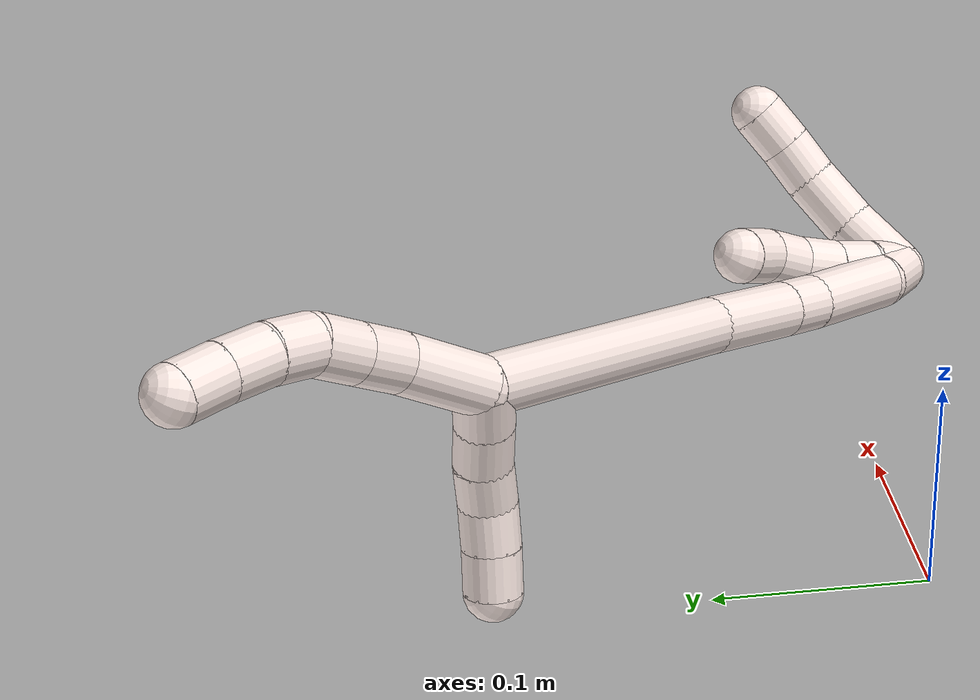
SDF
<sdf version="1.7">
 <world name="default">
  <model name="11">
   <static>0</static>
   <link name="11">
    <collision name="collision-cylinder-e_1_2_8">
     <pose>-0.001055 -0.000938 0.020373 0.046016 -0.051697 -0.00119</pose>
     <geometry><cylinder><radius>0.0125</radius><length>0.040844</length></cylinder></geometry>
     <surface>
      <friction><ode><mu>1.16</mu><mu2>1.16</mu2><slip1>0</slip1><slip2>0</slip2></ode></friction>
      <contact><ode><kp>1e+06</kp><kd>1</kd><max_vel>0</max_vel><min_depth>0.001</min_depth></ode></contact>
     </surface>
    </collision>
    <visual name="visual-cylinder-e_1_2_8">
     <pose>-0.001055 -0.000938 0.020373 0.046016 -0.051697 -0.00119</pose>
     <geometry><cylinder><radius>0.0125</radius><length>0.040844</length></cylinder></geometry>
     <material><ambient>1 0.933333 0.909804 1</ambient></material>
    </visual>
    <collision name="collision-cylinder-e_2_8_9">
     <pose>-0.004062 -0.001359 0.051673 -0.047294 -0.176498 0.004185</pose>
     <geometry><cylinder><radius>0.0125</radius><length>0.022223</length></cylinder></geometry>
     <surface>
      <friction><ode><mu>1.16</mu><mu2>1.16</mu2><slip1>0</slip1><slip2>0</slip2></ode></friction>
      <contact><ode><kp>1e+06</kp><kd>1</kd><max_vel>0</max_vel><min_depth>0.001</min_depth></ode></contact>
     </surface>
    </collision>
    <visual name="visual-cylinder-e_2_8_9">
     <pose>-0.004062 -0.001359 0.051673 -0.047294 -0.176498 0.004185</pose>
     <geometry><cylinder><radius>0.0125</radius><length>0.022223</length></cylinder></geometry>
     <material><ambient>1 0.933333 0.909804 1</ambient></material>
    </visual>
    <collision name="collision-cylinder-e_3_9_10">
     <pose>-0.007977 -0.000368 0.073459 -0.043662 -0.178818 0.003915</pose>
     <geometry><cylinder><radius>0.0125</radius><length>0.022094</length></cylinder></geometry>
     <surface>
      <friction><ode><mu>1.16</mu><mu2>1.16</mu2><slip1>0</slip1><slip2>0</slip2></ode></friction>
      <contact><ode><kp>1e+06</kp><kd>1</kd><max_vel>0</max_vel><min_depth>0.001</min_depth></ode></contact>
     </surface>
    </collision>
    <visual name="visual-cylinder-e_3_9_10">
     <pose>-0.007977 -0.000368 0.073459 -0.043662 -0.178818 0.003915</pose>
     <geometry><cylinder><radius>0.0125</radius><length>0.022094</length></cylinder></geometry>
     <material><ambient>1 0.933333 0.909804 1</ambient></material>
    </visual>
    <collision name="collision-cylinder-e_4_10_11">
     <pose>-0.011275 0.00405 0.094022 -0.386022 -0.126597 0.024774</pose>
     <geometry><cylinder><radius>0.0125</radius><length>0.021116</length></cylinder></geometry>
     <surface>
      <friction><ode><mu>1.16</mu><mu2>1.16</mu2><slip1>0</slip1><slip2>0</slip2></ode></friction>
      <contact><ode><kp>1e+06</kp><kd>1</kd><max_vel>0</max_vel><min_depth>0.001</min_depth></ode></contact>
     </surface>
    </collision>
    <visual name="visual-cylinder-e_4_10_11">
     <pose>-0.011275 0.00405 0.094022 -0.386022 -0.126597 0.024774</pose>
     <geometry><cylinder><radius>0.0125</radius><length>0.021116</length></cylinder></geometry>
     <material><ambient>1 0.933333 0.909804 1</ambient></material>
    </visual>
    <collision name="collision-cylinder-e_5_11_12">
     <pose>-0.013467 0.013439 0.113374 -0.513789 -0.077336 0.020326</pose>
     <geometry><cylinder><radius>0.0125</radius><length>0.022225</length></cylinder></geometry>
     <surface>
      <friction><ode><mu>1.16</mu><mu2>1.16</mu2><slip1>0</slip1><slip2>0</slip2></ode></friction>
      <contact><ode><kp>1e+06</kp><kd>1</kd><max_vel>0</max_vel><min_depth>0.001</min_depth></ode></contact>
     </surface>
    </collision>
    <visual name="visual-cylinder-e_5_11_12">
     <pose>-0.013467 0.013439 0.113374 -0.513789 -0.077336 0.020326</pose>
     <geometry><cylinder><radius>0.0125</radius><length>0.022225</length></cylinder></geometry>
     <material><ambient>1 0.933333 0.909804 1</ambient></material>
    </visual>
    <collision name="collision-cylinder-e_6_12_6">
     <pose>-0.015391 0.024574 0.132081 -0.56087 -0.099338 0.028633</pose>
     <geometry><cylinder><radius>0.0125</radius><length>0.021499</length></cylinder></geometry>
     <surface>
      <friction><ode><mu>1.16</mu><mu2>1.16</mu2><slip1>0</slip1><slip2>0</slip2></ode></friction>
      <contact><ode><kp>1e+06</kp><kd>1</kd><max_vel>0</max_vel><min_depth>0.001</min_depth></ode></contact>
     </surface>
    </collision>
    <visual name="visual-cylinder-e_6_12_6">
     <pose>-0.015391 0.024574 0.132081 -0.56087 -0.099338 0.028633</pose>
     <geometry><cylinder><radius>0.0125</radius><length>0.021499</length></cylinder></geometry>
     <material><ambient>1 0.933333 0.909804 1</ambient></material>
    </visual>
    <collision name="collision-cylinder-e_1_2_13">
     <pose>0.006204 0.00597 -0.005086 -2.27644 0.669201 -1.29079</pose>
     <geometry><cylinder><radius>0.0125</radius><length>0.02</length></cylinder></geometry>
     <surface>
      <friction><ode><mu>1.16</mu><mu2>1.16</mu2><slip1>0</slip1><slip2>0</slip2></ode></friction>
      <contact><ode><kp>1e+06</kp><kd>1</kd><max_vel>0</max_vel><min_depth>0.001</min_depth></ode></contact>
     </surface>
    </collision>
    <visual name="visual-cylinder-e_1_2_13">
     <pose>0.006204 0.00597 -0.005086 -2.27644 0.669201 -1.29079</pose>
     <geometry><cylinder><radius>0.0125</radius><length>0.02</length></cylinder></geometry>
     <material><ambient>1 0.933333 0.909804 1</ambient></material>
    </visual>
    <collision name="collision-cylinder-e_2_13_14">
     <pose>0.018534 0.018405 -0.01472 -2.18376 0.65945 -1.16547</pose>
     <geometry><cylinder><radius>0.0125</radius><length>0.02</length></cylinder></geometry>
     <surface>
      <friction><ode><mu>1.16</mu><mu2>1.16</mu2><slip1>0</slip1><slip2>0</slip2></ode></friction>
      <contact><ode><kp>1e+06</kp><kd>1</kd><max_vel>0</max_vel><min_depth>0.001</min_depth></ode></contact>
     </surface>
    </collision>
    <visual name="visual-cylinder-e_2_13_14">
     <pose>0.018534 0.018405 -0.01472 -2.18376 0.65945 -1.16547</pose>
     <geometry><cylinder><radius>0.0125</radius><length>0.02</length></cylinder></geometry>
     <material><ambient>1 0.933333 0.909804 1</ambient></material>
    </visual>
    <collision name="collision-cylinder-e_3_14_15">
     <pose>0.029826 0.031525 -0.024653 -2.25118 0.542799 -1.05591</pose>
     <geometry><cylinder><radius>0.0125</radius><length>0.02</length></cylinder></geometry>
     <surface>
      <friction><ode><mu>1.16</mu><mu2>1.16</mu2><slip1>0</slip1><slip2>0</slip2></ode></friction>
      <contact><ode><kp>1e+06</kp><kd>1</kd><max_vel>0</max_vel><min_depth>0.001</min_depth></ode></contact>
     </surface>
    </collision>
    <visual name="visual-cylinder-e_3_14_15">
     <pose>0.029826 0.031525 -0.024653 -2.25118 0.542799 -1.05591</pose>
     <geometry><cylinder><radius>0.0125</radius><length>0.02</length></cylinder></geometry>
     <material><ambient>1 0.933333 0.909804 1</ambient></material>
    </visual>
    <collision name="collision-cylinder-e_4_15_16">
     <pose>0.038452 0.046554 -0.034274 -2.03903 0.353399 -0.565262</pose>
     <geometry><cylinder><radius>0.0125</radius><length>0.02</length></cylinder></geometry>
     <surface>
      <friction><ode><mu>1.16</mu><mu2>1.16</mu2><slip1>0</slip1><slip2>0</slip2></ode></friction>
      <contact><ode><kp>1e+06</kp><kd>1</kd><max_vel>0</max_vel><min_depth>0.001</min_depth></ode></contact>
     </surface>
    </collision>
    <visual name="visual-cylinder-e_4_15_16">
     <pose>0.038452 0.046554 -0.034274 -2.03903 0.353399 -0.565262</pose>
     <geometry><cylinder><radius>0.0125</radius><length>0.02</length></cylinder></geometry>
     <material><ambient>1 0.933333 0.909804 1</ambient></material>
    </visual>
    <collision name="collision-cylinder-e_5_16_5">
     <pose>0.045435 0.06349 -0.042282 -1.98584 0.359903 -0.544082</pose>
     <geometry><cylinder><radius>0.0125</radius><length>0.02</length></cylinder></geometry>
     <surface>
      <friction><ode><mu>1.16</mu><mu2>1.16</mu2><slip1>0</slip1><slip2>0</slip2></ode></friction>
      <contact><ode><kp>1e+06</kp><kd>1</kd><max_vel>0</max_vel><min_depth>0.001</min_depth></ode></contact>
     </surface>
    </collision>
    <visual name="visual-cylinder-e_5_16_5">
     <pose>0.045435 0.06349 -0.042282 -1.98584 0.359903 -0.544082</pose>
     <geometry><cylinder><radius>0.0125</radius><length>0.02</length></cylinder></geometry>
     <material><ambient>1 0.933333 0.909804 1</ambient></material>
    </visual>
    <collision name="collision-cylinder-e_1_2_17">
     <pose>0.020741 -0.028429 -0.07028 2.7572 0.267052 1.20833</pose>
     <geometry><cylinder><radius>0.0125</radius><length>0.157197</length></cylinder></geometry>
     <surface>
      <friction><ode><mu>1.16</mu><mu2>1.16</mu2><slip1>0</slip1><slip2>0</slip2></ode></friction>
      <contact><ode><kp>1e+06</kp><kd>1</kd><max_vel>0</max_vel><min_depth>0.001</min_depth></ode></contact>
     </surface>
    </collision>
    <visual name="visual-cylinder-e_1_2_17">
     <pose>0.020741 -0.028429 -0.07028 2.7572 0.267052 1.20833</pose>
     <geometry><cylinder><radius>0.0125</radius><length>0.157197</length></cylinder></geometry>
     <material><ambient>1 0.933333 0.909804 1</ambient></material>
    </visual>
    <collision name="collision-cylinder-e_2_17_18">
     <pose>0.045591 -0.065634 -0.16356 2.77711 0.165367 0.845205</pose>
     <geometry><cylinder><radius>0.0125</radius><length>0.049914</length></cylinder></geometry>
     <surface>
      <friction><ode><mu>1.16</mu><mu2>1.16</mu2><slip1>0</slip1><slip2>0</slip2></ode></friction>
      <contact><ode><kp>1e+06</kp><kd>1</kd><max_vel>0</max_vel><min_depth>0.001</min_depth></ode></contact>
     </surface>
    </collision>
    <visual name="visual-cylinder-e_2_17_18">
     <pose>0.045591 -0.065634 -0.16356 2.77711 0.165367 0.845205</pose>
     <geometry><cylinder><radius>0.0125</radius><length>0.049914</length></cylinder></geometry>
     <material><ambient>1 0.933333 0.909804 1</ambient></material>
    </visual>
    <collision name="collision-cylinder-e_3_18_19">
     <pose>0.051308 -0.078238 -0.196289 2.76663 0.152664 0.766427</pose>
     <geometry><cylinder><radius>0.0125</radius><length>0.021159</length></cylinder></geometry>
     <surface>
      <friction><ode><mu>1.16</mu><mu2>1.16</mu2><slip1>0</slip1><slip2>0</slip2></ode></friction>
      <contact><ode><kp>1e+06</kp><kd>1</kd><max_vel>0</max_vel><min_depth>0.001</min_depth></ode></contact>
     </surface>
    </collision>
    <visual name="visual-cylinder-e_3_18_19">
     <pose>0.051308 -0.078238 -0.196289 2.76663 0.152664 0.766427</pose>
     <geometry><cylinder><radius>0.0125</radius><length>0.021159</length></cylinder></geometry>
     <material><ambient>1 0.933333 0.909804 1</ambient></material>
    </visual>
    <collision name="collision-cylinder-e_4_19_20">
     <pose>0.05583 -0.092111 -0.228608 2.72325 0.117296 0.539703</pose>
     <geometry><cylinder><radius>0.0125</radius><length>0.049784</length></cylinder></geometry>
     <surface>
      <friction><ode><mu>1.16</mu><mu2>1.16</mu2><slip1>0</slip1><slip2>0</slip2></ode></friction>
      <contact><ode><kp>1e+06</kp><kd>1</kd><max_vel>0</max_vel><min_depth>0.001</min_depth></ode></contact>
     </surface>
    </collision>
    <visual name="visual-cylinder-e_4_19_20">
     <pose>0.05583 -0.092111 -0.228608 2.72325 0.117296 0.539703</pose>
     <geometry><cylinder><radius>0.0125</radius><length>0.049784</length></cylinder></geometry>
     <material><ambient>1 0.933333 0.909804 1</ambient></material>
    </visual>
    <collision name="collision-cylinder-e_5_20_1">
     <pose>0.062977 -0.107491 -0.259799 2.58616 0.396193 1.22695</pose>
     <geometry><cylinder><radius>0.0125</radius><length>0.021946</length></cylinder></geometry>
     <surface>
      <friction><ode><mu>1.16</mu><mu2>1.16</mu2><slip1>0</slip1><slip2>0</slip2></ode></friction>
      <contact><ode><kp>1e+06</kp><kd>1</kd><max_vel>0</max_vel><min_depth>0.001</min_depth></ode></contact>
     </surface>
    </collision>
    <visual name="visual-cylinder-e_5_20_1">
     <pose>0.062977 -0.107491 -0.259799 2.58616 0.396193 1.22695</pose>
     <geometry><cylinder><radius>0.0125</radius><length>0.021946</length></cylinder></geometry>
     <material><ambient>1 0.933333 0.909804 1</ambient></material>
    </visual>
    <collision name="collision-cylinder-e_1_1_21">
     <pose>0.075662 -0.123019 -0.260288 0.898499 0.575513 0.283479</pose>
     <geometry><cylinder><radius>0.0125</radius><length>0.03105</length></cylinder></geometry>
     <surface>
      <friction><ode><mu>1.16</mu><mu2>1.16</mu2><slip1>0</slip1><slip2>0</slip2></ode></friction>
      <contact><ode><kp>1e+06</kp><kd>1</kd><max_vel>0</max_vel><min_depth>0.001</min_depth></ode></contact>
     </surface>
    </collision>
    <visual name="visual-cylinder-e_1_1_21">
     <pose>0.075662 -0.123019 -0.260288 0.898499 0.575513 0.283479</pose>
     <geometry><cylinder><radius>0.0125</radius><length>0.03105</length></cylinder></geometry>
     <material><ambient>1 0.933333 0.909804 1</ambient></material>
    </visual>
    <collision name="collision-cylinder-e_2_21_22">
     <pose>0.088941 -0.143036 -0.243012 0.820246 0.34505 0.151237</pose>
     <geometry><cylinder><radius>0.0125</radius><length>0.028558</length></cylinder></geometry>
     <surface>
      <friction><ode><mu>1.16</mu><mu2>1.16</mu2><slip1>0</slip1><slip2>0</slip2></ode></friction>
      <contact><ode><kp>1e+06</kp><kd>1</kd><max_vel>0</max_vel><min_depth>0.001</min_depth></ode></contact>
     </surface>
    </collision>
    <visual name="visual-cylinder-e_2_21_22">
     <pose>0.088941 -0.143036 -0.243012 0.820246 0.34505 0.151237</pose>
     <geometry><cylinder><radius>0.0125</radius><length>0.028558</length></cylinder></geometry>
     <material><ambient>1 0.933333 0.909804 1</ambient></material>
    </visual>
    <collision name="collision-cylinder-e_3_22_23">
     <pose>0.0956 -0.159928 -0.22684 0.789491 0.181786 0.075907</pose>
     <geometry><cylinder><radius>0.0125</radius><length>0.020235</length></cylinder></geometry>
     <surface>
      <friction><ode><mu>1.16</mu><mu2>1.16</mu2><slip1>0</slip1><slip2>0</slip2></ode></friction>
      <contact><ode><kp>1e+06</kp><kd>1</kd><max_vel>0</max_vel><min_depth>0.001</min_depth></ode></contact>
     </surface>
    </collision>
    <visual name="visual-cylinder-e_3_22_23">
     <pose>0.0956 -0.159928 -0.22684 0.789491 0.181786 0.075907</pose>
     <geometry><cylinder><radius>0.0125</radius><length>0.020235</length></cylinder></geometry>
     <material><ambient>1 0.933333 0.909804 1</ambient></material>
    </visual>
    <collision name="collision-cylinder-e_4_23_4">
     <pose>0.099137 -0.173493 -0.212322 0.71333 0.170253 0.063569</pose>
     <geometry><cylinder><radius>0.0125</radius><length>0.020157</length></cylinder></geometry>
     <surface>
      <friction><ode><mu>1.16</mu><mu2>1.16</mu2><slip1>0</slip1><slip2>0</slip2></ode></friction>
      <contact><ode><kp>1e+06</kp><kd>1</kd><max_vel>0</max_vel><min_depth>0.001</min_depth></ode></contact>
     </surface>
    </collision>
    <visual name="visual-cylinder-e_4_23_4">
     <pose>0.099137 -0.173493 -0.212322 0.71333 0.170253 0.063569</pose>
     <geometry><cylinder><radius>0.0125</radius><length>0.020157</length></cylinder></geometry>
     <material><ambient>1 0.933333 0.909804 1</ambient></material>
    </visual>
    <collision name="collision-cylinder-e_1_1_24">
     <pose>0.066406 -0.110921 -0.258617 -0.192665 -0.080663 0.007799</pose>
     <geometry><cylinder><radius>0.0125</radius><length>0.02</length></cylinder></geometry>
     <surface>
      <friction><ode><mu>1.16</mu><mu2>1.16</mu2><slip1>0</slip1><slip2>0</slip2></ode></friction>
      <contact><ode><kp>1e+06</kp><kd>1</kd><max_vel>0</max_vel><min_depth>0.001</min_depth></ode></contact>
     </surface>
    </collision>
    <visual name="visual-cylinder-e_1_1_24">
     <pose>0.066406 -0.110921 -0.258617 -0.192665 -0.080663 0.007799</pose>
     <geometry><cylinder><radius>0.0125</radius><length>0.02</length></cylinder></geometry>
     <material><ambient>1 0.933333 0.909804 1</ambient></material>
    </visual>
    <collision name="collision-cylinder-e_2_24_25">
     <pose>0.06659 -0.107081 -0.239072 -0.195287 0.099107 -0.009716</pose>
     <geometry><cylinder><radius>0.0125</radius><length>0.02</length></cylinder></geometry>
     <surface>
      <friction><ode><mu>1.16</mu><mu2>1.16</mu2><slip1>0</slip1><slip2>0</slip2></ode></friction>
      <contact><ode><kp>1e+06</kp><kd>1</kd><max_vel>0</max_vel><min_depth>0.001</min_depth></ode></contact>
     </surface>
    </collision>
    <visual name="visual-cylinder-e_2_24_25">
     <pose>0.06659 -0.107081 -0.239072 -0.195287 0.099107 -0.009716</pose>
     <geometry><cylinder><radius>0.0125</radius><length>0.02</length></cylinder></geometry>
     <material><ambient>1 0.933333 0.909804 1</ambient></material>
    </visual>
    <collision name="collision-cylinder-e_3_25_26">
     <pose>0.069024 -0.104245 -0.219456 -0.091616 0.144982 -0.006658</pose>
     <geometry><cylinder><radius>0.0125</radius><length>0.02</length></cylinder></geometry>
     <surface>
      <friction><ode><mu>1.16</mu><mu2>1.16</mu2><slip1>0</slip1><slip2>0</slip2></ode></friction>
      <contact><ode><kp>1e+06</kp><kd>1</kd><max_vel>0</max_vel><min_depth>0.001</min_depth></ode></contact>
     </surface>
    </collision>
    <visual name="visual-cylinder-e_3_25_26">
     <pose>0.069024 -0.104245 -0.219456 -0.091616 0.144982 -0.006658</pose>
     <geometry><cylinder><radius>0.0125</radius><length>0.02</length></cylinder></geometry>
     <material><ambient>1 0.933333 0.909804 1</ambient></material>
    </visual>
    <collision name="collision-cylinder-e_4_26_27">
     <pose>0.069498 -0.102874 -0.199661 -0.046791 -0.09725 0.002277</pose>
     <geometry><cylinder><radius>0.0125</radius><length>0.02</length></cylinder></geometry>
     <surface>
      <friction><ode><mu>1.16</mu><mu2>1.16</mu2><slip1>0</slip1><slip2>0</slip2></ode></friction>
      <contact><ode><kp>1e+06</kp><kd>1</kd><max_vel>0</max_vel><min_depth>0.001</min_depth></ode></contact>
     </surface>
    </collision>
    <visual name="visual-cylinder-e_4_26_27">
     <pose>0.069498 -0.102874 -0.199661 -0.046791 -0.09725 0.002277</pose>
     <geometry><cylinder><radius>0.0125</radius><length>0.02</length></cylinder></geometry>
     <material><ambient>1 0.933333 0.909804 1</ambient></material>
    </visual>
    <collision name="collision-cylinder-e_5_27_3">
     <pose>0.065492 -0.099986 -0.180504 -0.257047 -0.308385 0.040168</pose>
     <geometry><cylinder><radius>0.0125</radius><length>0.02</length></cylinder></geometry>
     <surface>
      <friction><ode><mu>1.16</mu><mu2>1.16</mu2><slip1>0</slip1><slip2>0</slip2></ode></friction>
      <contact><ode><kp>1e+06</kp><kd>1</kd><max_vel>0</max_vel><min_depth>0.001</min_depth></ode></contact>
     </surface>
    </collision>
    <visual name="visual-cylinder-e_5_27_3">
     <pose>0.065492 -0.099986 -0.180504 -0.257047 -0.308385 0.040168</pose>
     <geometry><cylinder><radius>0.0125</radius><length>0.02</length></cylinder></geometry>
     <material><ambient>1 0.933333 0.909804 1</ambient></material>
    </visual>
    <collision name="collision-sphere-3">
     <pose>0.062456 -0.097564 -0.171289 0 -0 0</pose>
     <geometry><sphere><radius>0.0125</radius></sphere></geometry>
     <surface>
      <friction><ode><mu>1.16</mu><mu2>1.16</mu2><slip1>0</slip1><slip2>0</slip2></ode></friction>
      <contact><ode><kp>1e+06</kp><kd>1</kd><max_vel>0</max_vel><min_depth>0.001</min_depth></ode></contact>
     </surface>
    </collision>
    <visual name="visual-sphere-3">
     <pose>0.062456 -0.097564 -0.171289 0 -0 0</pose>
     <geometry><sphere><radius>0.0125</radius></sphere></geometry>
     <material><ambient>1 0.933333 0.909804 1</ambient></material>
    </visual>
    <collision name="collision-sphere-27">
     <pose>0.068527 -0.102409 -0.189719 0 -0 0</pose>
     <geometry><sphere><radius>0.0125</radius></sphere></geometry>
     <surface>
      <friction><ode><mu>1.16</mu><mu2>1.16</mu2><slip1>0</slip1><slip2>0</slip2></ode></friction>
      <contact><ode><kp>1e+06</kp><kd>1</kd><max_vel>0</max_vel><min_depth>0.001</min_depth></ode></contact>
     </surface>
    </collision>
    <visual name="visual-sphere-27">
     <pose>0.068527 -0.102409 -0.189719 0 -0 0</pose>
     <geometry><sphere><radius>0.0125</radius></sphere></geometry>
     <material><ambient>1 0.933333 0.909804 1</ambient></material>
    </visual>
    <collision name="collision-sphere-26">
     <pose>0.070469 -0.10334 -0.209603 0 -0 0</pose>
     <geometry><sphere><radius>0.0125</radius></sphere></geometry>
     <surface>
      <friction><ode><mu>1.16</mu><mu2>1.16</mu2><slip1>0</slip1><slip2>0</slip2></ode></friction>
      <contact><ode><kp>1e+06</kp><kd>1</kd><max_vel>0</max_vel><min_depth>0.001</min_depth></ode></contact>
     </surface>
    </collision>
    <visual name="visual-sphere-26">
     <pose>0.070469 -0.10334 -0.209603 0 -0 0</pose>
     <geometry><sphere><radius>0.0125</radius></sphere></geometry>
     <material><ambient>1 0.933333 0.909804 1</ambient></material>
    </visual>
    <collision name="collision-sphere-25">
     <pose>0.067579 -0.10515 -0.22931 0 -0 0</pose>
     <geometry><sphere><radius>0.0125</radius></sphere></geometry>
     <surface>
      <friction><ode><mu>1.16</mu><mu2>1.16</mu2><slip1>0</slip1><slip2>0</slip2></ode></friction>
      <contact><ode><kp>1e+06</kp><kd>1</kd><max_vel>0</max_vel><min_depth>0.001</min_depth></ode></contact>
     </surface>
    </collision>
    <visual name="visual-sphere-25">
     <pose>0.067579 -0.10515 -0.22931 0 -0 0</pose>
     <geometry><sphere><radius>0.0125</radius></sphere></geometry>
     <material><ambient>1 0.933333 0.909804 1</ambient></material>
    </visual>
    <collision name="collision-sphere-24">
     <pose>0.0656 -0.109012 -0.248834 0 -0 0</pose>
     <geometry><sphere><radius>0.0125</radius></sphere></geometry>
     <surface>
      <friction><ode><mu>1.16</mu><mu2>1.16</mu2><slip1>0</slip1><slip2>0</slip2></ode></friction>
      <contact><ode><kp>1e+06</kp><kd>1</kd><max_vel>0</max_vel><min_depth>0.001</min_depth></ode></contact>
     </surface>
    </collision>
    <visual name="visual-sphere-24">
     <pose>0.0656 -0.109012 -0.248834 0 -0 0</pose>
     <geometry><sphere><radius>0.0125</radius></sphere></geometry>
     <material><ambient>1 0.933333 0.909804 1</ambient></material>
    </visual>
    <collision name="collision-sphere-4">
     <pose>0.100844 -0.179992 -0.204811 0 -0 0</pose>
     <geometry><sphere><radius>0.0125</radius></sphere></geometry>
     <surface>
      <friction><ode><mu>1.16</mu><mu2>1.16</mu2><slip1>0</slip1><slip2>0</slip2></ode></friction>
      <contact><ode><kp>1e+06</kp><kd>1</kd><max_vel>0</max_vel><min_depth>0.001</min_depth></ode></contact>
     </surface>
    </collision>
    <visual name="visual-sphere-4">
     <pose>0.100844 -0.179992 -0.204811 0 -0 0</pose>
     <geometry><sphere><radius>0.0125</radius></sphere></geometry>
     <material><ambient>1 0.933333 0.909804 1</ambient></material>
    </visual>
    <collision name="collision-sphere-23">
     <pose>0.097429 -0.166993 -0.219833 0 -0 0</pose>
     <geometry><sphere><radius>0.0125</radius></sphere></geometry>
     <surface>
      <friction><ode><mu>1.16</mu><mu2>1.16</mu2><slip1>0</slip1><slip2>0</slip2></ode></friction>
      <contact><ode><kp>1e+06</kp><kd>1</kd><max_vel>0</max_vel><min_depth>0.001</min_depth></ode></contact>
     </surface>
    </collision>
    <visual name="visual-sphere-23">
     <pose>0.097429 -0.166993 -0.219833 0 -0 0</pose>
     <geometry><sphere><radius>0.0125</radius></sphere></geometry>
     <material><ambient>1 0.933333 0.909804 1</ambient></material>
    </visual>
    <collision name="collision-sphere-22">
     <pose>0.093771 -0.152863 -0.233848 0 -0 0</pose>
     <geometry><sphere><radius>0.0125</radius></sphere></geometry>
     <surface>
      <friction><ode><mu>1.16</mu><mu2>1.16</mu2><slip1>0</slip1><slip2>0</slip2></ode></friction>
      <contact><ode><kp>1e+06</kp><kd>1</kd><max_vel>0</max_vel><min_depth>0.001</min_depth></ode></contact>
     </surface>
    </collision>
    <visual name="visual-sphere-22">
     <pose>0.093771 -0.152863 -0.233848 0 -0 0</pose>
     <geometry><sphere><radius>0.0125</radius></sphere></geometry>
     <material><ambient>1 0.933333 0.909804 1</ambient></material>
    </visual>
    <collision name="collision-sphere-21">
     <pose>0.084111 -0.133209 -0.252177 0 -0 0</pose>
     <geometry><sphere><radius>0.0125</radius></sphere></geometry>
     <surface>
      <friction><ode><mu>1.16</mu><mu2>1.16</mu2><slip1>0</slip1><slip2>0</slip2></ode></friction>
      <contact><ode><kp>1e+06</kp><kd>1</kd><max_vel>0</max_vel><min_depth>0.001</min_depth></ode></contact>
     </surface>
    </collision>
    <visual name="visual-sphere-21">
     <pose>0.084111 -0.133209 -0.252177 0 -0 0</pose>
     <geometry><sphere><radius>0.0125</radius></sphere></geometry>
     <material><ambient>1 0.933333 0.909804 1</ambient></material>
    </visual>
    <collision name="collision-sphere-1">
     <pose>0.067212 -0.112829 -0.2684 0 -0 0</pose>
     <geometry><sphere><radius>0.0125</radius></sphere></geometry>
     <surface>
      <friction><ode><mu>1.16</mu><mu2>1.16</mu2><slip1>0</slip1><slip2>0</slip2></ode></friction>
      <contact><ode><kp>1e+06</kp><kd>1</kd><max_vel>0</max_vel><min_depth>0.001</min_depth></ode></contact>
     </surface>
    </collision>
    <visual name="visual-sphere-1">
     <pose>0.067212 -0.112829 -0.2684 0 -0 0</pose>
     <geometry><sphere><radius>0.0125</radius></sphere></geometry>
     <material><ambient>1 0.933333 0.909804 1</ambient></material>
    </visual>
    <collision name="collision-sphere-12">
     <pose>-0.014325 0.018884 0.123023 0 -0 0</pose>
     <geometry><sphere><radius>0.0125</radius></sphere></geometry>
     <surface>
      <friction><ode><mu>1.16</mu><mu2>1.16</mu2><slip1>0</slip1><slip2>0</slip2></ode></friction>
      <contact><ode><kp>1e+06</kp><kd>1</kd><max_vel>0</max_vel><min_depth>0.001</min_depth></ode></contact>
     </surface>
    </collision>
    <visual name="visual-sphere-12">
     <pose>-0.014325 0.018884 0.123023 0 -0 0</pose>
     <geometry><sphere><radius>0.0125</radius></sphere></geometry>
     <material><ambient>1 0.933333 0.909804 1</ambient></material>
    </visual>
    <collision name="collision-sphere-11">
     <pose>-0.012608 0.007994 0.103725 0 -0 0</pose>
     <geometry><sphere><radius>0.0125</radius></sphere></geometry>
     <surface>
      <friction><ode><mu>1.16</mu><mu2>1.16</mu2><slip1>0</slip1><slip2>0</slip2></ode></friction>
      <contact><ode><kp>1e+06</kp><kd>1</kd><max_vel>0</max_vel><min_depth>0.001</min_depth></ode></contact>
     </surface>
    </collision>
    <visual name="visual-sphere-11">
     <pose>-0.012608 0.007994 0.103725 0 -0 0</pose>
     <geometry><sphere><radius>0.0125</radius></sphere></geometry>
     <material><ambient>1 0.933333 0.909804 1</ambient></material>
    </visual>
    <collision name="collision-sphere-10">
     <pose>-0.009942 0.000107 0.08432 0 -0 0</pose>
     <geometry><sphere><radius>0.0125</radius></sphere></geometry>
     <surface>
      <friction><ode><mu>1.16</mu><mu2>1.16</mu2><slip1>0</slip1><slip2>0</slip2></ode></friction>
      <contact><ode><kp>1e+06</kp><kd>1</kd><max_vel>0</max_vel><min_depth>0.001</min_depth></ode></contact>
     </surface>
    </collision>
    <visual name="visual-sphere-10">
     <pose>-0.009942 0.000107 0.08432 0 -0 0</pose>
     <geometry><sphere><radius>0.0125</radius></sphere></geometry>
     <material><ambient>1 0.933333 0.909804 1</ambient></material>
    </visual>
    <collision name="collision-sphere-9">
     <pose>-0.006012 -0.000842 0.062599 0 -0 0</pose>
     <geometry><sphere><radius>0.0125</radius></sphere></geometry>
     <surface>
      <friction><ode><mu>1.16</mu><mu2>1.16</mu2><slip1>0</slip1><slip2>0</slip2></ode></friction>
      <contact><ode><kp>1e+06</kp><kd>1</kd><max_vel>0</max_vel><min_depth>0.001</min_depth></ode></contact>
     </surface>
    </collision>
    <visual name="visual-sphere-9">
     <pose>-0.006012 -0.000842 0.062599 0 -0 0</pose>
     <geometry><sphere><radius>0.0125</radius></sphere></geometry>
     <material><ambient>1 0.933333 0.909804 1</ambient></material>
    </visual>
    <collision name="collision-sphere-2">
     <geometry><sphere><radius>0.0125</radius></sphere></geometry>
     <surface>
      <friction><ode><mu>1.16</mu><mu2>1.16</mu2><slip1>0</slip1><slip2>0</slip2></ode></friction>
      <contact><ode><kp>1e+06</kp><kd>1</kd><max_vel>0</max_vel><min_depth>0.001</min_depth></ode></contact>
     </surface>
    </collision>
    <visual name="visual-sphere-2">
     <geometry><sphere><radius>0.0125</radius></sphere></geometry>
     <material><ambient>1 0.933333 0.909804 1</ambient></material>
    </visual>
    <collision name="collision-sphere-19">
     <pose>0.052917 -0.082068 -0.206019 0 -0 0</pose>
     <geometry><sphere><radius>0.0125</radius></sphere></geometry>
     <surface>
      <friction><ode><mu>1.16</mu><mu2>1.16</mu2><slip1>0</slip1><slip2>0</slip2></ode></friction>
      <contact><ode><kp>1e+06</kp><kd>1</kd><max_vel>0</max_vel><min_depth>0.001</min_depth></ode></contact>
     </surface>
    </collision>
    <visual name="visual-sphere-19">
     <pose>0.052917 -0.082068 -0.206019 0 -0 0</pose>
     <geometry><sphere><radius>0.0125</radius></sphere></geometry>
     <material><ambient>1 0.933333 0.909804 1</ambient></material>
    </visual>
    <collision name="collision-sphere-8">
     <pose>-0.002111 -0.001876 0.040746 0 -0 0</pose>
     <geometry><sphere><radius>0.0125</radius></sphere></geometry>
     <surface>
      <friction><ode><mu>1.16</mu><mu2>1.16</mu2><slip1>0</slip1><slip2>0</slip2></ode></friction>
      <contact><ode><kp>1e+06</kp><kd>1</kd><max_vel>0</max_vel><min_depth>0.001</min_depth></ode></contact>
     </surface>
    </collision>
    <visual name="visual-sphere-8">
     <pose>-0.002111 -0.001876 0.040746 0 -0 0</pose>
     <geometry><sphere><radius>0.0125</radius></sphere></geometry>
     <material><ambient>1 0.933333 0.909804 1</ambient></material>
    </visual>
    <collision name="collision-sphere-6">
     <pose>-0.016458 0.030264 0.141138 0 -0 0</pose>
     <geometry><sphere><radius>0.0125</radius></sphere></geometry>
     <surface>
      <friction><ode><mu>1.16</mu><mu2>1.16</mu2><slip1>0</slip1><slip2>0</slip2></ode></friction>
      <contact><ode><kp>1e+06</kp><kd>1</kd><max_vel>0</max_vel><min_depth>0.001</min_depth></ode></contact>
     </surface>
    </collision>
    <visual name="visual-sphere-6">
     <pose>-0.016458 0.030264 0.141138 0 -0 0</pose>
     <geometry><sphere><radius>0.0125</radius></sphere></geometry>
     <material><ambient>1 0.933333 0.909804 1</ambient></material>
    </visual>
    <collision name="collision-sphere-13">
     <pose>0.012407 0.01194 -0.010173 0 -0 0</pose>
     <geometry><sphere><radius>0.0125</radius></sphere></geometry>
     <surface>
      <friction><ode><mu>1.16</mu><mu2>1.16</mu2><slip1>0</slip1><slip2>0</slip2></ode></friction>
      <contact><ode><kp>1e+06</kp><kd>1</kd><max_vel>0</max_vel><min_depth>0.001</min_depth></ode></contact>
     </surface>
    </collision>
    <visual name="visual-sphere-13">
     <pose>0.012407 0.01194 -0.010173 0 -0 0</pose>
     <geometry><sphere><radius>0.0125</radius></sphere></geometry>
     <material><ambient>1 0.933333 0.909804 1</ambient></material>
    </visual>
    <collision name="collision-sphere-14">
     <pose>0.024661 0.024869 -0.019266 0 -0 0</pose>
     <geometry><sphere><radius>0.0125</radius></sphere></geometry>
     <surface>
      <friction><ode><mu>1.16</mu><mu2>1.16</mu2><slip1>0</slip1><slip2>0</slip2></ode></friction>
      <contact><ode><kp>1e+06</kp><kd>1</kd><max_vel>0</max_vel><min_depth>0.001</min_depth></ode></contact>
     </surface>
    </collision>
    <visual name="visual-sphere-14">
     <pose>0.024661 0.024869 -0.019266 0 -0 0</pose>
     <geometry><sphere><radius>0.0125</radius></sphere></geometry>
     <material><ambient>1 0.933333 0.909804 1</ambient></material>
    </visual>
    <collision name="collision-sphere-15">
     <pose>0.034992 0.038181 -0.03004 0 -0 0</pose>
     <geometry><sphere><radius>0.0125</radius></sphere></geometry>
     <surface>
      <friction><ode><mu>1.16</mu><mu2>1.16</mu2><slip1>0</slip1><slip2>0</slip2></ode></friction>
      <contact><ode><kp>1e+06</kp><kd>1</kd><max_vel>0</max_vel><min_depth>0.001</min_depth></ode></contact>
     </surface>
    </collision>
    <visual name="visual-sphere-15">
     <pose>0.034992 0.038181 -0.03004 0 -0 0</pose>
     <geometry><sphere><radius>0.0125</radius></sphere></geometry>
     <material><ambient>1 0.933333 0.909804 1</ambient></material>
    </visual>
    <collision name="collision-sphere-16">
     <pose>0.041913 0.054926 -0.038508 0 -0 0</pose>
     <geometry><sphere><radius>0.0125</radius></sphere></geometry>
     <surface>
      <friction><ode><mu>1.16</mu><mu2>1.16</mu2><slip1>0</slip1><slip2>0</slip2></ode></friction>
      <contact><ode><kp>1e+06</kp><kd>1</kd><max_vel>0</max_vel><min_depth>0.001</min_depth></ode></contact>
     </surface>
    </collision>
    <visual name="visual-sphere-16">
     <pose>0.041913 0.054926 -0.038508 0 -0 0</pose>
     <geometry><sphere><radius>0.0125</radius></sphere></geometry>
     <material><ambient>1 0.933333 0.909804 1</ambient></material>
    </visual>
    <collision name="collision-sphere-5">
     <pose>0.048957 0.072055 -0.046056 0 -0 0</pose>
     <geometry><sphere><radius>0.0125</radius></sphere></geometry>
     <surface>
      <friction><ode><mu>1.16</mu><mu2>1.16</mu2><slip1>0</slip1><slip2>0</slip2></ode></friction>
      <contact><ode><kp>1e+06</kp><kd>1</kd><max_vel>0</max_vel><min_depth>0.001</min_depth></ode></contact>
     </surface>
    </collision>
    <visual name="visual-sphere-5">
     <pose>0.048957 0.072055 -0.046056 0 -0 0</pose>
     <geometry><sphere><radius>0.0125</radius></sphere></geometry>
     <material><ambient>1 0.933333 0.909804 1</ambient></material>
    </visual>
    <collision name="collision-sphere-17">
     <pose>0.041482 -0.056859 -0.14056 0 -0 0</pose>
     <geometry><sphere><radius>0.0125</radius></sphere></geometry>
     <surface>
      <friction><ode><mu>1.16</mu><mu2>1.16</mu2><slip1>0</slip1><slip2>0</slip2></ode></friction>
      <contact><ode><kp>1e+06</kp><kd>1</kd><max_vel>0</max_vel><min_depth>0.001</min_depth></ode></contact>
     </surface>
    </collision>
    <visual name="visual-sphere-17">
     <pose>0.041482 -0.056859 -0.14056 0 -0 0</pose>
     <geometry><sphere><radius>0.0125</radius></sphere></geometry>
     <material><ambient>1 0.933333 0.909804 1</ambient></material>
    </visual>
    <collision name="collision-sphere-18">
     <pose>0.049699 -0.074409 -0.186559 0 -0 0</pose>
     <geometry><sphere><radius>0.0125</radius></sphere></geometry>
     <surface>
      <friction><ode><mu>1.16</mu><mu2>1.16</mu2><slip1>0</slip1><slip2>0</slip2></ode></friction>
      <contact><ode><kp>1e+06</kp><kd>1</kd><max_vel>0</max_vel><min_depth>0.001</min_depth></ode></contact>
     </surface>
    </collision>
    <visual name="visual-sphere-18">
     <pose>0.049699 -0.074409 -0.186559 0 -0 0</pose>
     <geometry><sphere><radius>0.0125</radius></sphere></geometry>
     <material><ambient>1 0.933333 0.909804 1</ambient></material>
    </visual>
    <collision name="collision-sphere-20">
     <pose>0.058743 -0.102154 -0.251198 0 -0 0</pose>
     <geometry><sphere><radius>0.0125</radius></sphere></geometry>
     <surface>
      <friction><ode><mu>1.16</mu><mu2>1.16</mu2><slip1>0</slip1><slip2>0</slip2></ode></friction>
      <contact><ode><kp>1e+06</kp><kd>1</kd><max_vel>0</max_vel><min_depth>0.001</min_depth></ode></contact>
     </surface>
    </collision>
    <visual name="visual-sphere-20">
     <pose>0.058743 -0.102154 -0.251198 0 -0 0</pose>
     <geometry><sphere><radius>0.0125</radius></sphere></geometry>
     <material><ambient>1 0.933333 0.909804 1</ambient></material>
    </visual>
    <inertial>
     <pose>0.037249 -0.049774 -0.103677 0 -0 0</pose>
     <mass>0.75</mass>
     <inertia><ixx>0.000491</ixx><ixy>0</ixy><ixz>0</ixz><iyy>0.000242</iyy><iyz>0</iyz><izz>3e-05</izz></inertia>
    </inertial>
   </link>
   <pose>-0.075797 0.209292 0.165091 -1.03826 0.519433 0.587055</pose>
  </model>
 </world>
</sdf>
